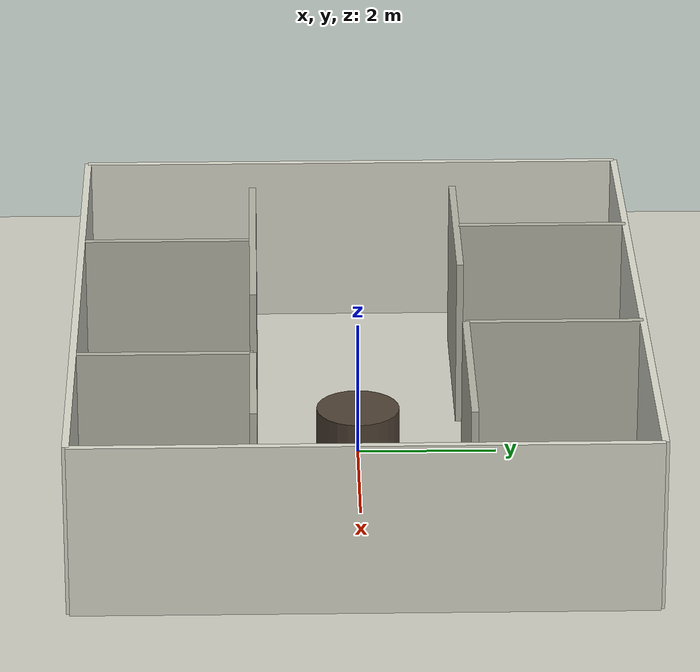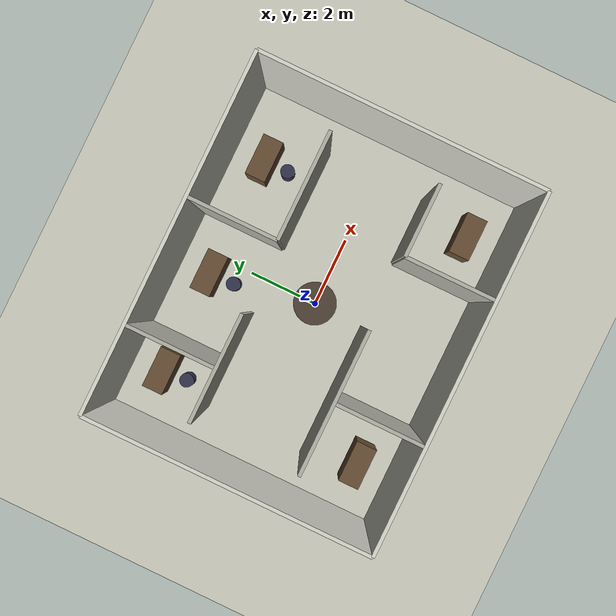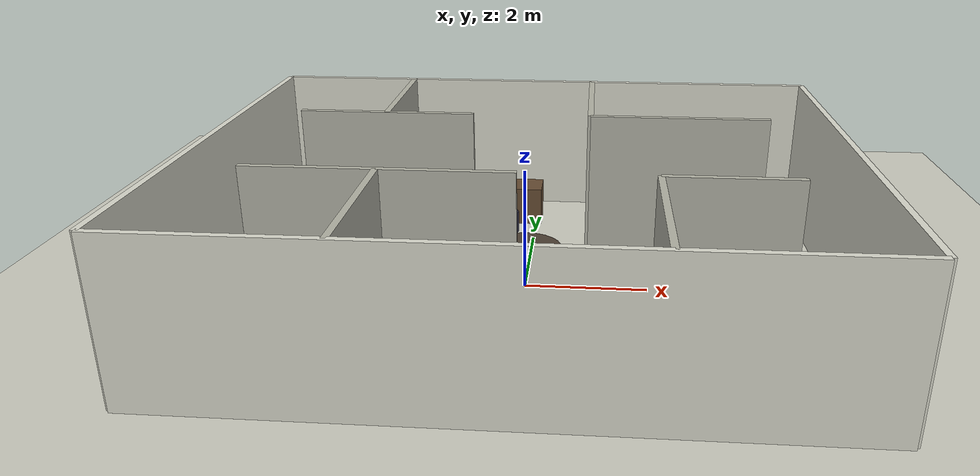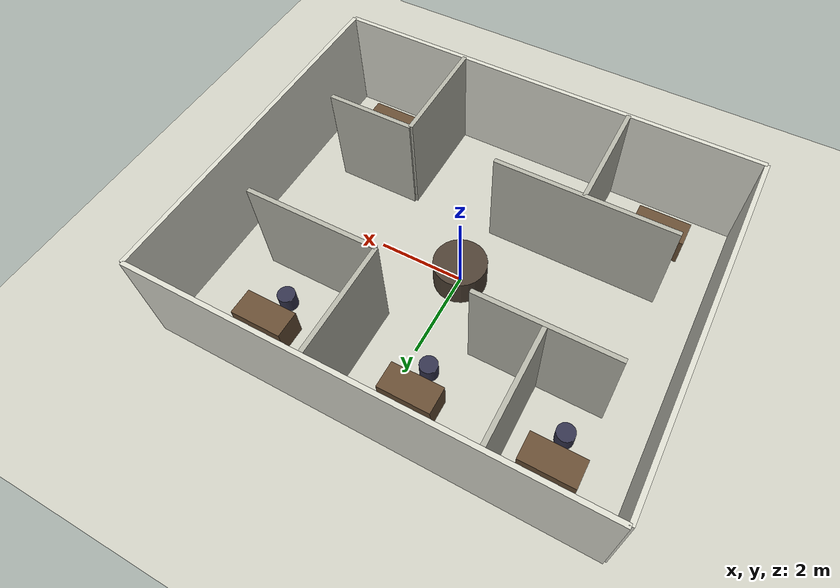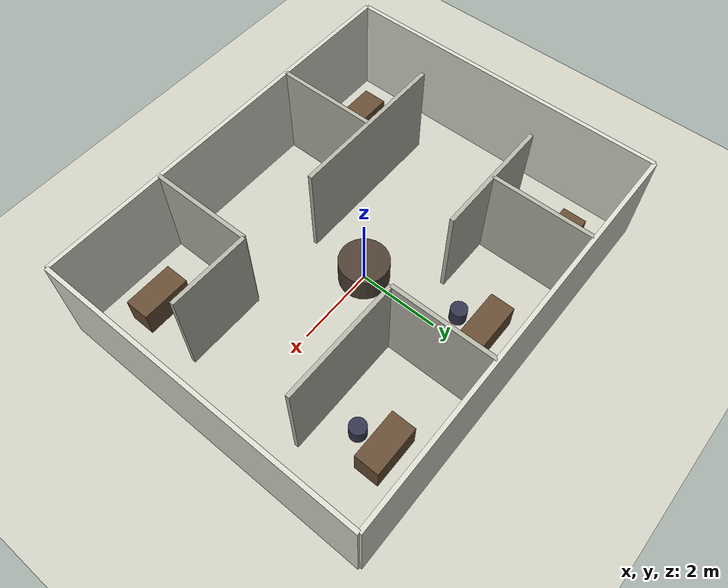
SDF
<?xml version="1.0" ?>
<sdf version="1.8">
  <world name="office_maze">

    <!-- Physics -->
    <physics name="1ms" type="ignored">
      <max_step_size>0.001</max_step_size>
      <real_time_factor>1.0</real_time_factor>
    </physics>

    <!-- Plugins -->
    <plugin filename="gz-sim-physics-system" name="gz::sim::systems::Physics"/>
    <plugin filename="gz-sim-user-commands-system" name="gz::sim::systems::UserCommands"/>
    <plugin filename="gz-sim-scene-broadcaster-system" name="gz::sim::systems::SceneBroadcaster"/>
    <plugin filename="gz-sim-sensors-system" name="gz::sim::systems::Sensors">
      <render_engine>ogre2</render_engine>
    </plugin>
    <plugin filename="gz-sim-imu-system" name="gz::sim::systems::Imu"/>
    <plugin filename="gz-sim-contact-system" name="gz::sim::systems::Contact"/>

    <!-- Lighting -->
    <light type="directional" name="sun">
      <cast_shadows>true</cast_shadows>
      <pose>0 0 10 0 0 0</pose>
      <diffuse>0.8 0.8 0.8 1</diffuse>
      <specular>0.2 0.2 0.2 1</specular>
      <direction>-0.5 0.1 -0.9</direction>
    </light>

    <!-- Ground -->
    <model name="ground_plane">
      <static>true</static>
      <link name="link">
        <collision name="collision">
          <geometry>
            <plane>
              <normal>0 0 1</normal>
              <size>100 100</size>
            </plane>
          </geometry>
        </collision>
        <visual name="visual">
          <geometry>
            <plane>
              <normal>0 0 1</normal>
              <size>100 100</size>
            </plane>
          </geometry>
          <material>
            <ambient>0.8 0.8 0.75 1</ambient>
            <diffuse>0.8 0.8 0.75 1</diffuse>
          </material>
        </visual>
      </link>
    </model>

    <!-- 사무실 외벽 (10m x 8m) -->

    <model name="wall_north">
      <static>true</static>
      <pose>0 4 1.25 0 0 0</pose>
      <link name="link">
        <collision name="collision">
          <geometry><box><size>10 0.1 2.5</size></box></geometry>
        </collision>
        <visual name="visual">
          <geometry><box><size>10 0.1 2.5</size></box></geometry>
          <material>
            <ambient>0.85 0.85 0.8 1</ambient>
            <diffuse>0.85 0.85 0.8 1</diffuse>
          </material>
        </visual>
      </link>
    </model>

    <model name="wall_south">
      <static>true</static>
      <pose>0 -4 1.25 0 0 0</pose>
      <link name="link">
        <collision name="collision">
          <geometry><box><size>10 0.1 2.5</size></box></geometry>
        </collision>
        <visual name="visual">
          <geometry><box><size>10 0.1 2.5</size></box></geometry>
          <material>
            <ambient>0.85 0.85 0.8 1</ambient>
            <diffuse>0.85 0.85 0.8 1</diffuse>
          </material>
        </visual>
      </link>
    </model>

    <model name="wall_east">
      <static>true</static>
      <pose>5 0 1.25 0 0 0</pose>
      <link name="link">
        <collision name="collision">
          <geometry><box><size>0.1 8 2.5</size></box></geometry>
        </collision>
        <visual name="visual">
          <geometry><box><size>0.1 8 2.5</size></box></geometry>
          <material>
            <ambient>0.85 0.85 0.8 1</ambient>
            <diffuse>0.85 0.85 0.8 1</diffuse>
          </material>
        </visual>
      </link>
    </model>

    <model name="wall_west">
      <static>true</static>
      <pose>-5 0 1.25 0 0 0</pose>
      <link name="link">
        <collision name="collision">
          <geometry><box><size>0.1 8 2.5</size></box></geometry>
        </collision>
        <visual name="visual">
          <geometry><box><size>0.1 8 2.5</size></box></geometry>
          <material>
            <ambient>0.85 0.85 0.8 1</ambient>
            <diffuse>0.85 0.85 0.8 1</diffuse>
          </material>
        </visual>
      </link>
    </model>

    <!-- 내부 파티션/복도 -->

    <!-- 중앙 복도 벽 (수평) -->
    <model name="corridor_h1">
      <static>true</static>
      <pose>-2.5 1.5 1.25 0 0 0</pose>
      <link name="link">
        <collision name="collision">
          <geometry><box><size>3 0.1 2.5</size></box></geometry>
        </collision>
        <visual name="visual">
          <geometry><box><size>3 0.1 2.5</size></box></geometry>
          <material>
            <ambient>0.7 0.7 0.65 1</ambient>
            <diffuse>0.7 0.7 0.65 1</diffuse>
          </material>
        </visual>
      </link>
    </model>

    <model name="corridor_h2">
      <static>true</static>
      <pose>2.5 1.5 1.25 0 0 0</pose>
      <link name="link">
        <collision name="collision">
          <geometry><box><size>3 0.1 2.5</size></box></geometry>
        </collision>
        <visual name="visual">
          <geometry><box><size>3 0.1 2.5</size></box></geometry>
          <material>
            <ambient>0.7 0.7 0.65 1</ambient>
            <diffuse>0.7 0.7 0.65 1</diffuse>
          </material>
        </visual>
      </link>
    </model>

    <model name="corridor_h3">
      <static>true</static>
      <pose>-2 -1.5 1.25 0 0 0</pose>
      <link name="link">
        <collision name="collision">
          <geometry><box><size>4 0.1 2.5</size></box></geometry>
        </collision>
        <visual name="visual">
          <geometry><box><size>4 0.1 2.5</size></box></geometry>
          <material>
            <ambient>0.7 0.7 0.65 1</ambient>
            <diffuse>0.7 0.7 0.65 1</diffuse>
          </material>
        </visual>
      </link>
    </model>

    <model name="corridor_h4">
      <static>true</static>
      <pose>3 -1.5 1.25 0 0 0</pose>
      <link name="link">
        <collision name="collision">
          <geometry><box><size>2 0.1 2.5</size></box></geometry>
        </collision>
        <visual name="visual">
          <geometry><box><size>2 0.1 2.5</size></box></geometry>
          <material>
            <ambient>0.7 0.7 0.65 1</ambient>
            <diffuse>0.7 0.7 0.65 1</diffuse>
          </material>
        </visual>
      </link>
    </model>

    <!-- 수직 파티션 -->
    <model name="partition_v1">
      <static>true</static>
      <pose>-2.5 2.75 1.25 0 0 0</pose>
      <link name="link">
        <collision name="collision">
          <geometry><box><size>0.1 2.5 2.5</size></box></geometry>
        </collision>
        <visual name="visual">
          <geometry><box><size>0.1 2.5 2.5</size></box></geometry>
          <material>
            <ambient>0.7 0.7 0.65 1</ambient>
            <diffuse>0.7 0.7 0.65 1</diffuse>
          </material>
        </visual>
      </link>
    </model>

    <model name="partition_v2">
      <static>true</static>
      <pose>1 2.75 1.25 0 0 0</pose>
      <link name="link">
        <collision name="collision">
          <geometry><box><size>0.1 2.5 2.5</size></box></geometry>
        </collision>
        <visual name="visual">
          <geometry><box><size>0.1 2.5 2.5</size></box></geometry>
          <material>
            <ambient>0.7 0.7 0.65 1</ambient>
            <diffuse>0.7 0.7 0.65 1</diffuse>
          </material>
        </visual>
      </link>
    </model>

    <model name="partition_v3">
      <static>true</static>
      <pose>-2 -2.75 1.25 0 0 0</pose>
      <link name="link">
        <collision name="collision">
          <geometry><box><size>0.1 2.5 2.5</size></box></geometry>
        </collision>
        <visual name="visual">
          <geometry><box><size>0.1 2.5 2.5</size></box></geometry>
          <material>
            <ambient>0.7 0.7 0.65 1</ambient>
            <diffuse>0.7 0.7 0.65 1</diffuse>
          </material>
        </visual>
      </link>
    </model>

    <model name="partition_v4">
      <static>true</static>
      <pose>2 -2.75 1.25 0 0 0</pose>
      <link name="link">
        <collision name="collision">
          <geometry><box><size>0.1 2.5 2.5</size></box></geometry>
        </collision>
        <visual name="visual">
          <geometry><box><size>0.1 2.5 2.5</size></box></geometry>
          <material>
            <ambient>0.7 0.7 0.65 1</ambient>
            <diffuse>0.7 0.7 0.65 1</diffuse>
          </material>
        </visual>
      </link>
    </model>

    <!-- 사무용 가구 -->

    <!-- 책상들 -->
    <model name="desk_1">
      <static>true</static>
      <pose>-3.5 3 0.35 0 0 0</pose>
      <link name="link">
        <collision name="collision">
          <geometry><box><size>1.2 0.6 0.7</size></box></geometry>
        </collision>
        <visual name="visual">
          <geometry><box><size>1.2 0.6 0.7</size></box></geometry>
          <material>
            <ambient>0.4 0.3 0.2 1</ambient>
            <diffuse>0.4 0.3 0.2 1</diffuse>
          </material>
        </visual>
      </link>
    </model>

    <model name="desk_2">
      <static>true</static>
      <pose>-0.5 3 0.35 0 0 0</pose>
      <link name="link">
        <collision name="collision">
          <geometry><box><size>1.2 0.6 0.7</size></box></geometry>
        </collision>
        <visual name="visual">
          <geometry><box><size>1.2 0.6 0.7</size></box></geometry>
          <material>
            <ambient>0.4 0.3 0.2 1</ambient>
            <diffuse>0.4 0.3 0.2 1</diffuse>
          </material>
        </visual>
      </link>
    </model>

    <model name="desk_3">
      <static>true</static>
      <pose>3 3 0.35 0 0 0</pose>
      <link name="link">
        <collision name="collision">
          <geometry><box><size>1.2 0.6 0.7</size></box></geometry>
        </collision>
        <visual name="visual">
          <geometry><box><size>1.2 0.6 0.7</size></box></geometry>
          <material>
            <ambient>0.4 0.3 0.2 1</ambient>
            <diffuse>0.4 0.3 0.2 1</diffuse>
          </material>
        </visual>
      </link>
    </model>

    <model name="desk_4">
      <static>true</static>
      <pose>-3.5 -3 0.35 0 0 0</pose>
      <link name="link">
        <collision name="collision">
          <geometry><box><size>1.2 0.6 0.7</size></box></geometry>
        </collision>
        <visual name="visual">
          <geometry><box><size>1.2 0.6 0.7</size></box></geometry>
          <material>
            <ambient>0.4 0.3 0.2 1</ambient>
            <diffuse>0.4 0.3 0.2 1</diffuse>
          </material>
        </visual>
      </link>
    </model>

    <model name="desk_5">
      <static>true</static>
      <pose>3.5 -3 0.35 0 0 0</pose>
      <link name="link">
        <collision name="collision">
          <geometry><box><size>1.2 0.6 0.7</size></box></geometry>
        </collision>
        <visual name="visual">
          <geometry><box><size>1.2 0.6 0.7</size></box></geometry>
          <material>
            <ambient>0.4 0.3 0.2 1</ambient>
            <diffuse>0.4 0.3 0.2 1</diffuse>
          </material>
        </visual>
      </link>
    </model>

    <!-- 의자들 -->
    <model name="chair_1">
      <static>true</static>
      <pose>-3.5 2.3 0.2 0 0 0</pose>
      <link name="link">
        <collision name="collision">
          <geometry><cylinder><radius>0.2</radius><length>0.4</length></cylinder></geometry>
        </collision>
        <visual name="visual">
          <geometry><cylinder><radius>0.2</radius><length>0.4</length></cylinder></geometry>
          <material>
            <ambient>0.2 0.2 0.3 1</ambient>
            <diffuse>0.2 0.2 0.3 1</diffuse>
          </material>
        </visual>
      </link>
    </model>

    <model name="chair_2">
      <static>true</static>
      <pose>-0.5 2.3 0.2 0 0 0</pose>
      <link name="link">
        <collision name="collision">
          <geometry><cylinder><radius>0.2</radius><length>0.4</length></cylinder></geometry>
        </collision>
        <visual name="visual">
          <geometry><cylinder><radius>0.2</radius><length>0.4</length></cylinder></geometry>
          <material>
            <ambient>0.2 0.2 0.3 1</ambient>
            <diffuse>0.2 0.2 0.3 1</diffuse>
          </material>
        </visual>
      </link>
    </model>

    <model name="chair_3">
      <static>true</static>
      <pose>3 2.3 0.2 0 0 0</pose>
      <link name="link">
        <collision name="collision">
          <geometry><cylinder><radius>0.2</radius><length>0.4</length></cylinder></geometry>
        </collision>
        <visual name="visual">
          <geometry><cylinder><radius>0.2</radius><length>0.4</length></cylinder></geometry>
          <material>
            <ambient>0.2 0.2 0.3 1</ambient>
            <diffuse>0.2 0.2 0.3 1</diffuse>
          </material>
        </visual>
      </link>
    </model>

    <!-- 회의 테이블 (중앙) -->
    <model name="meeting_table">
      <static>true</static>
      <pose>0 0 0.35 0 0 0</pose>
      <link name="link">
        <collision name="collision">
          <geometry><cylinder><radius>0.6</radius><length>0.7</length></cylinder></geometry>
        </collision>
        <visual name="visual">
          <geometry><cylinder><radius>0.6</radius><length>0.7</length></cylinder></geometry>
          <material>
            <ambient>0.3 0.25 0.2 1</ambient>
            <diffuse>0.3 0.25 0.2 1</diffuse>
          </material>
        </visual>
      </link>
    </model>

  </world>
</sdf>
